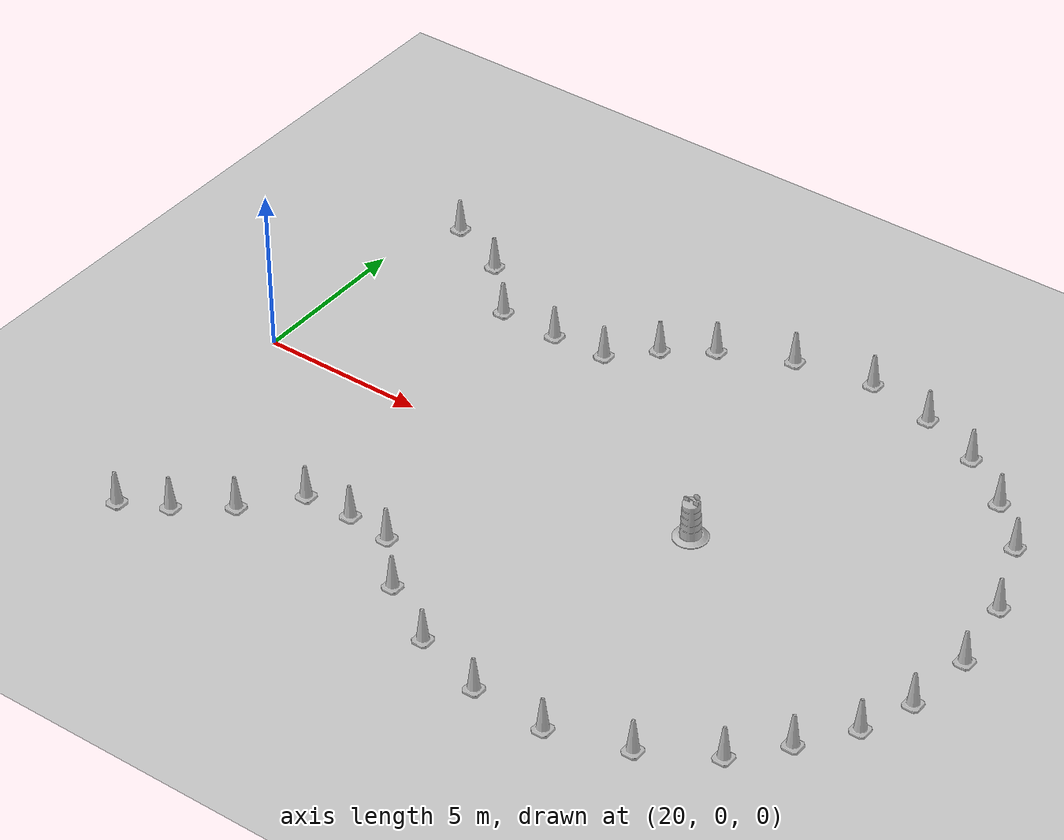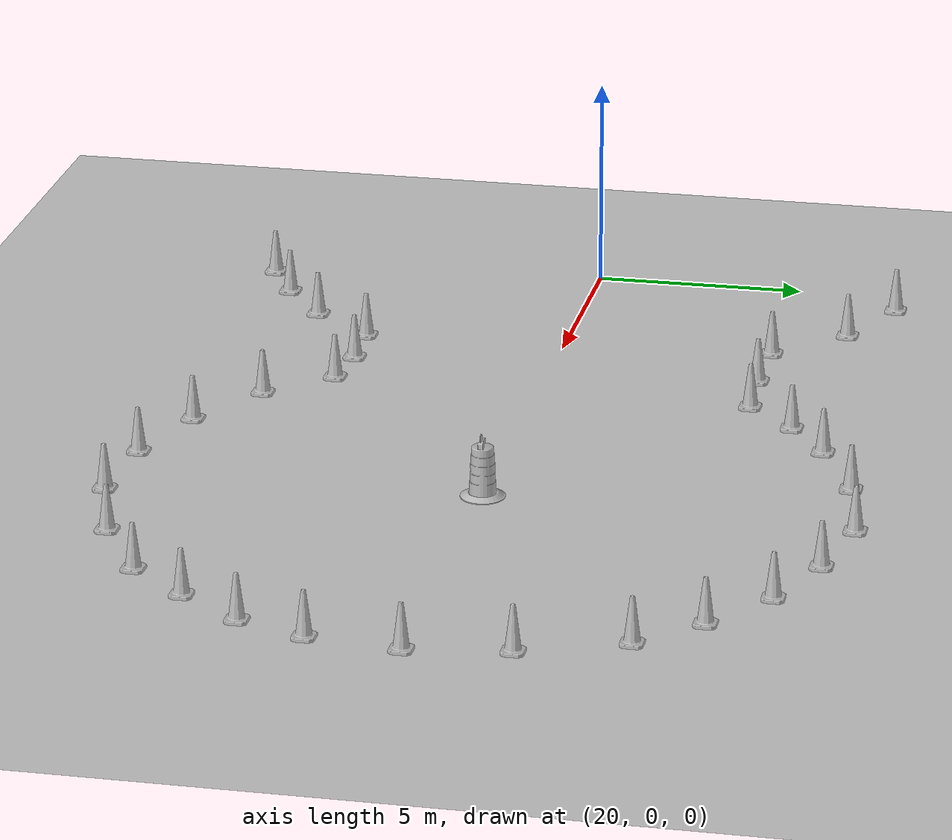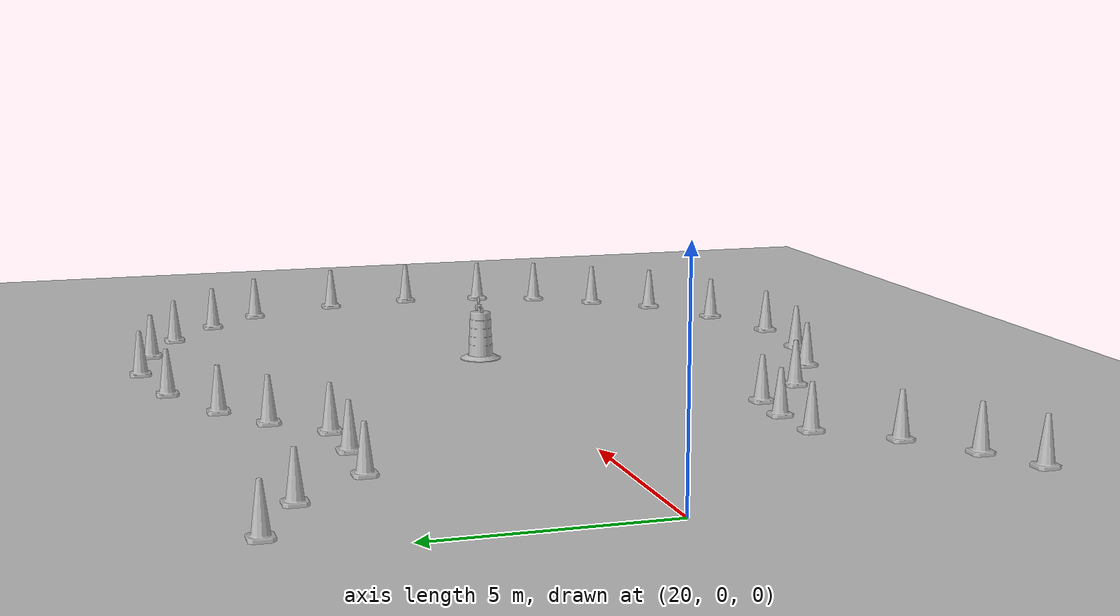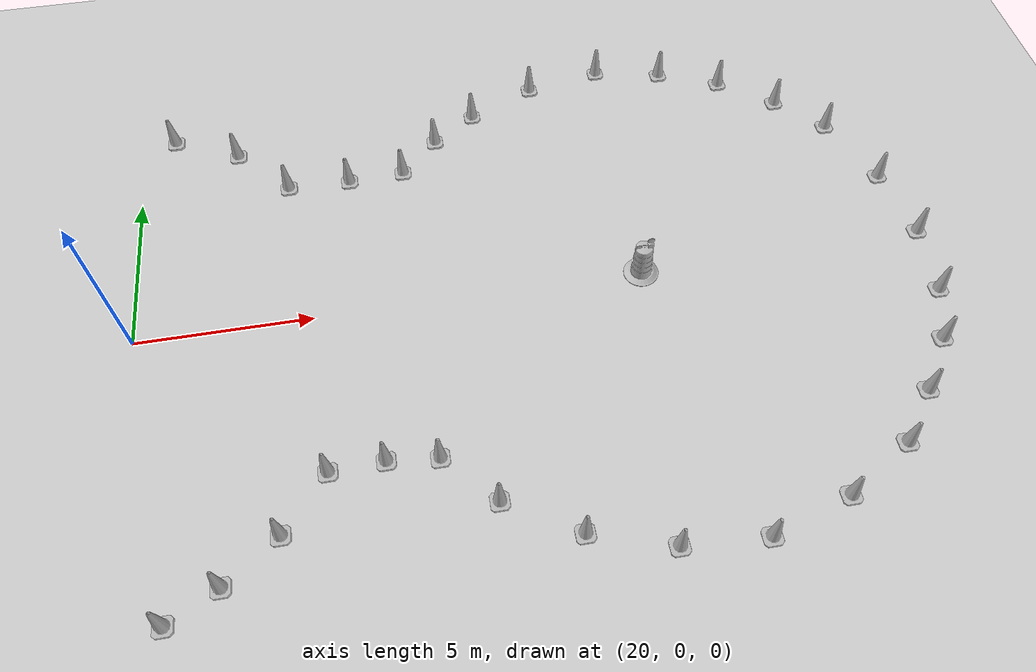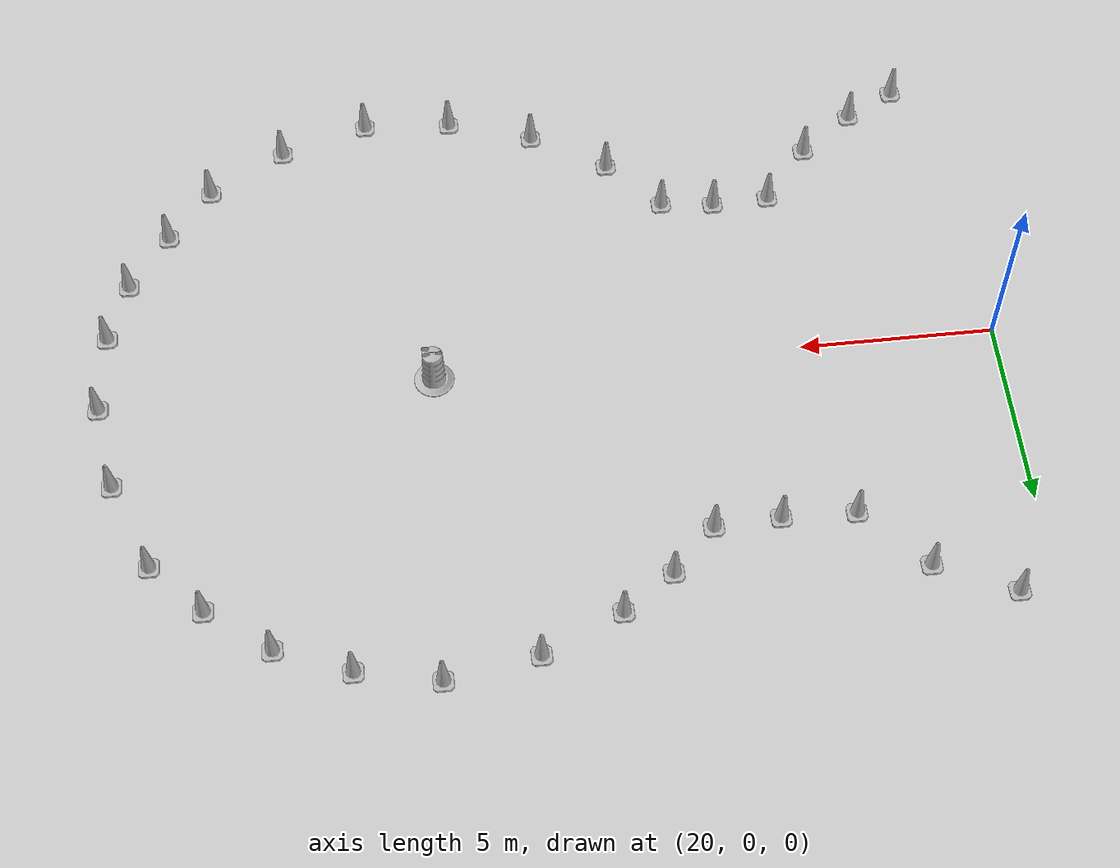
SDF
<sdf version="1.7">
 <world name="default">
  <model name="ground_plane">
   <static>1</static>
   <link name="link">
    <collision name="collision">
     <geometry><plane><normal>0 0 1</normal><size>100 100</size></plane></geometry>
     <surface>
      <contact><collide_bitmask>65535</collide_bitmask></contact>
      <friction><ode><mu>100</mu><mu2>50</mu2></ode></friction>
     </surface>
    </collision>
    <visual name="visual">
     <cast_shadows>0</cast_shadows>
     <geometry><plane><normal>0 0 1</normal><size>100 100</size></plane></geometry>
     <material>
      <script><uri>file://media/materials/scripts/gazebo.material</uri><name>Gazebo/Grey</name></script>
     </material>
    </visual>
   </link>
  </model>
  <model name="Construction Cone_18">
   <link name="link">
    <collision name="collision">
     <geometry>
      <mesh><scale>10 10 10</scale><uri>model://construction_cone/meshes/construction_cone.dae</uri></mesh>
     </geometry>
    </collision>
    <visual name="visual">
     <geometry>
      <mesh><scale>10 10 10</scale><uri>model://construction_cone/meshes/construction_cone.dae</uri></mesh>
     </geometry>
    </visual>
    <inertial>
     <inertia><ixx>1</ixx><ixy>0</ixy><ixz>0</ixz><iyy>1</iyy><iyz>0</iyz><izz>1</izz></inertia>
     <mass>1</mass>
    </inertial>
   </link>
   <pose>27.965 4.99109 -9e-06 1e-06 -1e-06 0</pose>
  </model>
  <model name="Construction Cone_19">
   <link name="link">
    <collision name="collision">
     <geometry>
      <mesh><scale>10 10 10</scale><uri>model://construction_cone/meshes/construction_cone.dae</uri></mesh>
     </geometry>
    </collision>
    <visual name="visual">
     <geometry>
      <mesh><scale>10 10 10</scale><uri>model://construction_cone/meshes/construction_cone.dae</uri></mesh>
     </geometry>
    </visual>
    <inertial>
     <inertia><ixx>1</ixx><ixy>0</ixy><ixz>0</ixz><iyy>1</iyy><iyz>0</iyz><izz>1</izz></inertia>
     <mass>1</mass>
    </inertial>
   </link>
   <pose>26.5932 -4.73262 -6e-06 -4e-06 0 0</pose>
  </model>
  <model name="Construction Cone_21">
   <link name="link">
    <collision name="collision">
     <geometry>
      <mesh><scale>10 10 10</scale><uri>model://construction_cone/meshes/construction_cone.dae</uri></mesh>
     </geometry>
    </collision>
    <visual name="visual">
     <geometry>
      <mesh><scale>10 10 10</scale><uri>model://construction_cone/meshes/construction_cone.dae</uri></mesh>
     </geometry>
    </visual>
    <inertial>
     <inertia><ixx>1</ixx><ixy>0</ixy><ixz>0</ixz><iyy>1</iyy><iyz>0</iyz><izz>1</izz></inertia>
     <mass>1</mass>
    </inertial>
   </link>
   <pose>34.8288 8.37486 -0 0 -1e-06 0</pose>
  </model>
  <model name="Construction Cone_22">
   <link name="link">
    <collision name="collision">
     <geometry>
      <mesh><scale>10 10 10</scale><uri>model://construction_cone/meshes/construction_cone.dae</uri></mesh>
     </geometry>
    </collision>
    <visual name="visual">
     <geometry>
      <mesh><scale>10 10 10</scale><uri>model://construction_cone/meshes/construction_cone.dae</uri></mesh>
     </geometry>
    </visual>
    <inertial>
     <inertia><ixx>1</ixx><ixy>0</ixy><ixz>0</ixz><iyy>1</iyy><iyz>0</iyz><izz>1</izz></inertia>
     <mass>1</mass>
    </inertial>
   </link>
   <pose>35.6707 -8.32648 -0 0 -0 0</pose>
  </model>
  <model name="Construction Cone_25">
   <link name="link">
    <collision name="collision">
     <geometry>
      <mesh><scale>10 10 10</scale><uri>model://construction_cone/meshes/construction_cone.dae</uri></mesh>
     </geometry>
    </collision>
    <visual name="visual">
     <geometry>
      <mesh><scale>10 10 10</scale><uri>model://construction_cone/meshes/construction_cone.dae</uri></mesh>
     </geometry>
    </visual>
    <inertial>
     <inertia><ixx>1</ixx><ixy>0</ixy><ixz>0</ixz><iyy>1</iyy><iyz>0</iyz><izz>1</izz></inertia>
     <mass>1</mass>
    </inertial>
   </link>
   <pose>42.8854 0.042319 -1e-05 -1e-06 0 0</pose>
  </model>
  <model name="Construction Cone_26">
   <link name="link">
    <collision name="collision">
     <geometry>
      <mesh><scale>10 10 10</scale><uri>model://construction_cone/meshes/construction_cone.dae</uri></mesh>
     </geometry>
    </collision>
    <visual name="visual">
     <geometry>
      <mesh><scale>10 10 10</scale><uri>model://construction_cone/meshes/construction_cone.dae</uri></mesh>
     </geometry>
    </visual>
    <inertial>
     <inertia><ixx>1</ixx><ixy>0</ixy><ixz>0</ixz><iyy>1</iyy><iyz>0</iyz><izz>1</izz></inertia>
     <mass>1</mass>
    </inertial>
   </link>
   <pose>41.0431 -5.12828 -0 0 -1e-06 0</pose>
  </model>
  <model name="Construction Cone_27">
   <link name="link">
    <collision name="collision">
     <geometry>
      <mesh><scale>10 10 10</scale><uri>model://construction_cone/meshes/construction_cone.dae</uri></mesh>
     </geometry>
    </collision>
    <visual name="visual">
     <geometry>
      <mesh><scale>10 10 10</scale><uri>model://construction_cone/meshes/construction_cone.dae</uri></mesh>
     </geometry>
    </visual>
    <inertial>
     <inertia><ixx>1</ixx><ixy>0</ixy><ixz>0</ixz><iyy>1</iyy><iyz>0</iyz><izz>1</izz></inertia>
     <mass>1</mass>
    </inertial>
   </link>
   <pose>40.3648 5.9811 -0 0 -0 0</pose>
  </model>
  <model name="Construction Cone_28">
   <link name="link">
    <collision name="collision">
     <geometry>
      <mesh><scale>10 10 10</scale><uri>model://construction_cone/meshes/construction_cone.dae</uri></mesh>
     </geometry>
    </collision>
    <visual name="visual">
     <geometry>
      <mesh><scale>10 10 10</scale><uri>model://construction_cone/meshes/construction_cone.dae</uri></mesh>
     </geometry>
    </visual>
    <inertial>
     <inertia><ixx>1</ixx><ixy>0</ixy><ixz>0</ixz><iyy>1</iyy><iyz>0</iyz><izz>1</izz></inertia>
     <mass>1</mass>
    </inertial>
   </link>
   <pose>22.8958 6.56539 -0 0 -0 0</pose>
  </model>
  <model name="Construction Cone_30">
   <link name="link">
    <collision name="collision">
     <geometry>
      <mesh><scale>10 10 10</scale><uri>model://construction_cone/meshes/construction_cone.dae</uri></mesh>
     </geometry>
    </collision>
    <visual name="visual">
     <geometry>
      <mesh><scale>10 10 10</scale><uri>model://construction_cone/meshes/construction_cone.dae</uri></mesh>
     </geometry>
    </visual>
    <inertial>
     <inertia><ixx>1</ixx><ixy>0</ixy><ixz>0</ixz><iyy>1</iyy><iyz>0</iyz><izz>1</izz></inertia>
     <mass>1</mass>
    </inertial>
   </link>
   <pose>30.4253 7.04171 -0 0 -1e-06 0</pose>
  </model>
  <model name="Construction Cone_33">
   <link name="link">
    <collision name="collision">
     <geometry>
      <mesh><scale>10 10 10</scale><uri>model://construction_cone/meshes/construction_cone.dae</uri></mesh>
     </geometry>
    </collision>
    <visual name="visual">
     <geometry>
      <mesh><scale>10 10 10</scale><uri>model://construction_cone/meshes/construction_cone.dae</uri></mesh>
     </geometry>
    </visual>
    <inertial>
     <inertia><ixx>1</ixx><ixy>0</ixy><ixz>0</ixz><iyy>1</iyy><iyz>0</iyz><izz>1</izz></inertia>
     <mass>1</mass>
    </inertial>
   </link>
   <pose>20.9384 7.47675 -0 0 -1e-06 0</pose>
  </model>
  <model name="Construction Cone_34">
   <link name="link">
    <collision name="collision">
     <geometry>
      <mesh><scale>10 10 10</scale><uri>model://construction_cone/meshes/construction_cone.dae</uri></mesh>
     </geometry>
    </collision>
    <visual name="visual">
     <geometry>
      <mesh><scale>10 10 10</scale><uri>model://construction_cone/meshes/construction_cone.dae</uri></mesh>
     </geometry>
    </visual>
    <inertial>
     <inertia><ixx>1</ixx><ixy>0</ixy><ixz>0</ixz><iyy>1</iyy><iyz>0</iyz><izz>1</izz></inertia>
     <mass>1</mass>
    </inertial>
   </link>
   <pose>24.4328 4.95756 -0 0 -0 0</pose>
  </model>
  <model name="Construction Cone_35">
   <link name="link">
    <collision name="collision">
     <geometry>
      <mesh><scale>10 10 10</scale><uri>model://construction_cone/meshes/construction_cone.dae</uri></mesh>
     </geometry>
    </collision>
    <visual name="visual">
     <geometry>
      <mesh><scale>10 10 10</scale><uri>model://construction_cone/meshes/construction_cone.dae</uri></mesh>
     </geometry>
    </visual>
    <inertial>
     <inertia><ixx>1</ixx><ixy>0</ixy><ixz>0</ixz><iyy>1</iyy><iyz>0</iyz><izz>1</izz></inertia>
     <mass>1</mass>
    </inertial>
   </link>
   <pose>26.2937 4.90693 -0 0 -0 0</pose>
  </model>
  <model name="Construction Cone_36">
   <link name="link">
    <collision name="collision">
     <geometry>
      <mesh><scale>10 10 10</scale><uri>model://construction_cone/meshes/construction_cone.dae</uri></mesh>
     </geometry>
    </collision>
    <visual name="visual">
     <geometry>
      <mesh><scale>10 10 10</scale><uri>model://construction_cone/meshes/construction_cone.dae</uri></mesh>
     </geometry>
    </visual>
    <inertial>
     <inertia><ixx>1</ixx><ixy>0</ixy><ixz>0</ixz><iyy>1</iyy><iyz>0</iyz><izz>1</izz></inertia>
     <mass>1</mass>
    </inertial>
   </link>
   <pose>29.0997 6.12797 -1e-05 -1e-06 0 0</pose>
  </model>
  <model name="Construction Cone_37">
   <link name="link">
    <collision name="collision">
     <geometry>
      <mesh><scale>10 10 10</scale><uri>model://construction_cone/meshes/construction_cone.dae</uri></mesh>
     </geometry>
    </collision>
    <visual name="visual">
     <geometry>
      <mesh><scale>10 10 10</scale><uri>model://construction_cone/meshes/construction_cone.dae</uri></mesh>
     </geometry>
    </visual>
    <inertial>
     <inertia><ixx>1</ixx><ixy>0</ixy><ixz>0</ixz><iyy>1</iyy><iyz>0</iyz><izz>1</izz></inertia>
     <mass>1</mass>
    </inertial>
   </link>
   <pose>32.4808 7.95831 -5e-06 -4e-06 1e-06 0</pose>
  </model>
  <model name="Construction Cone_38">
   <link name="link">
    <collision name="collision">
     <geometry>
      <mesh><scale>10 10 10</scale><uri>model://construction_cone/meshes/construction_cone.dae</uri></mesh>
     </geometry>
    </collision>
    <visual name="visual">
     <geometry>
      <mesh><scale>10 10 10</scale><uri>model://construction_cone/meshes/construction_cone.dae</uri></mesh>
     </geometry>
    </visual>
    <inertial>
     <inertia><ixx>1</ixx><ixy>0</ixy><ixz>0</ixz><iyy>1</iyy><iyz>0</iyz><izz>1</izz></inertia>
     <mass>1</mass>
    </inertial>
   </link>
   <pose>36.9065 7.92964 -3e-06 -3e-06 -1e-06 -0</pose>
  </model>
  <model name="Construction Cone_39">
   <link name="link">
    <collision name="collision">
     <geometry>
      <mesh><scale>10 10 10</scale><uri>model://construction_cone/meshes/construction_cone.dae</uri></mesh>
     </geometry>
    </collision>
    <visual name="visual">
     <geometry>
      <mesh><scale>10 10 10</scale><uri>model://construction_cone/meshes/construction_cone.dae</uri></mesh>
     </geometry>
    </visual>
    <inertial>
     <inertia><ixx>1</ixx><ixy>0</ixy><ixz>0</ixz><iyy>1</iyy><iyz>0</iyz><izz>1</izz></inertia>
     <mass>1</mass>
    </inertial>
   </link>
   <pose>38.7693 7.17099 -0 -0 -0 -0</pose>
  </model>
  <model name="Construction Cone_40">
   <link name="link">
    <collision name="collision">
     <geometry>
      <mesh><scale>10 10 10</scale><uri>model://construction_cone/meshes/construction_cone.dae</uri></mesh>
     </geometry>
    </collision>
    <visual name="visual">
     <geometry>
      <mesh><scale>10 10 10</scale><uri>model://construction_cone/meshes/construction_cone.dae</uri></mesh>
     </geometry>
    </visual>
    <inertial>
     <inertia><ixx>1</ixx><ixy>0</ixy><ixz>0</ixz><iyy>1</iyy><iyz>0</iyz><izz>1</izz></inertia>
     <mass>1</mass>
    </inertial>
   </link>
   <pose>41.6445 4.65655 -6e-06 2e-06 -0 0</pose>
  </model>
  <model name="Construction Cone_41">
   <link name="link">
    <collision name="collision">
     <geometry>
      <mesh><scale>10 10 10</scale><uri>model://construction_cone/meshes/construction_cone.dae</uri></mesh>
     </geometry>
    </collision>
    <visual name="visual">
     <geometry>
      <mesh><scale>10 10 10</scale><uri>model://construction_cone/meshes/construction_cone.dae</uri></mesh>
     </geometry>
    </visual>
    <inertial>
     <inertia><ixx>1</ixx><ixy>0</ixy><ixz>0</ixz><iyy>1</iyy><iyz>0</iyz><izz>1</izz></inertia>
     <mass>1</mass>
    </inertial>
   </link>
   <pose>42.5388 2.32461 -9e-06 1e-06 -1e-06 0</pose>
  </model>
  <model name="Construction Cone_42">
   <link name="link">
    <collision name="collision">
     <geometry>
      <mesh><scale>10 10 10</scale><uri>model://construction_cone/meshes/construction_cone.dae</uri></mesh>
     </geometry>
    </collision>
    <visual name="visual">
     <geometry>
      <mesh><scale>10 10 10</scale><uri>model://construction_cone/meshes/construction_cone.dae</uri></mesh>
     </geometry>
    </visual>
    <inertial>
     <inertia><ixx>1</ixx><ixy>0</ixy><ixz>0</ixz><iyy>1</iyy><iyz>0</iyz><izz>1</izz></inertia>
     <mass>1</mass>
    </inertial>
   </link>
   <pose>42.6589 -2.07592 -0 0 -1e-06 0</pose>
  </model>
  <model name="Construction Cone_43">
   <link name="link">
    <collision name="collision">
     <geometry>
      <mesh><scale>10 10 10</scale><uri>model://construction_cone/meshes/construction_cone.dae</uri></mesh>
     </geometry>
    </collision>
    <visual name="visual">
     <geometry>
      <mesh><scale>10 10 10</scale><uri>model://construction_cone/meshes/construction_cone.dae</uri></mesh>
     </geometry>
    </visual>
    <inertial>
     <inertia><ixx>1</ixx><ixy>0</ixy><ixz>0</ixz><iyy>1</iyy><iyz>0</iyz><izz>1</izz></inertia>
     <mass>1</mass>
    </inertial>
   </link>
   <pose>42.0906 -3.65847 0 -0 -0 -0</pose>
  </model>
  <model name="Construction Cone_44">
   <link name="link">
    <collision name="collision">
     <geometry>
      <mesh><scale>10 10 10</scale><uri>model://construction_cone/meshes/construction_cone.dae</uri></mesh>
     </geometry>
    </collision>
    <visual name="visual">
     <geometry>
      <mesh><scale>10 10 10</scale><uri>model://construction_cone/meshes/construction_cone.dae</uri></mesh>
     </geometry>
    </visual>
    <inertial>
     <inertia><ixx>1</ixx><ixy>0</ixy><ixz>0</ixz><iyy>1</iyy><iyz>0</iyz><izz>1</izz></inertia>
     <mass>1</mass>
    </inertial>
   </link>
   <pose>39.9017 -6.50049 -0 0 -0 0</pose>
  </model>
  <model name="Construction Cone_45">
   <link name="link">
    <collision name="collision">
     <geometry>
      <mesh><scale>10 10 10</scale><uri>model://construction_cone/meshes/construction_cone.dae</uri></mesh>
     </geometry>
    </collision>
    <visual name="visual">
     <geometry>
      <mesh><scale>10 10 10</scale><uri>model://construction_cone/meshes/construction_cone.dae</uri></mesh>
     </geometry>
    </visual>
    <inertial>
     <inertia><ixx>1</ixx><ixy>0</ixy><ixz>0</ixz><iyy>1</iyy><iyz>0</iyz><izz>1</izz></inertia>
     <mass>1</mass>
    </inertial>
   </link>
   <pose>37.9424 -7.63443 -0 0 -0 0</pose>
  </model>
  <model name="Construction Cone_46">
   <link name="link">
    <collision name="collision">
     <geometry>
      <mesh><scale>10 10 10</scale><uri>model://construction_cone/meshes/construction_cone.dae</uri></mesh>
     </geometry>
    </collision>
    <visual name="visual">
     <geometry>
      <mesh><scale>10 10 10</scale><uri>model://construction_cone/meshes/construction_cone.dae</uri></mesh>
     </geometry>
    </visual>
    <inertial>
     <inertia><ixx>1</ixx><ixy>0</ixy><ixz>0</ixz><iyy>1</iyy><iyz>0</iyz><izz>1</izz></inertia>
     <mass>1</mass>
    </inertial>
   </link>
   <pose>27.9634 -4.88484 -0 0 -0 0</pose>
  </model>
  <model name="Construction Cone_47">
   <link name="link">
    <collision name="collision">
     <geometry>
      <mesh><scale>10 10 10</scale><uri>model://construction_cone/meshes/construction_cone.dae</uri></mesh>
     </geometry>
    </collision>
    <visual name="visual">
     <geometry>
      <mesh><scale>10 10 10</scale><uri>model://construction_cone/meshes/construction_cone.dae</uri></mesh>
     </geometry>
    </visual>
    <inertial>
     <inertia><ixx>1</ixx><ixy>0</ixy><ixz>0</ixz><iyy>1</iyy><iyz>0</iyz><izz>1</izz></inertia>
     <mass>1</mass>
    </inertial>
   </link>
   <pose>29.279 -6.3025 -0 0 -1e-06 0</pose>
  </model>
  <model name="Construction Cone_48">
   <link name="link">
    <collision name="collision">
     <geometry>
      <mesh><scale>10 10 10</scale><uri>model://construction_cone/meshes/construction_cone.dae</uri></mesh>
     </geometry>
    </collision>
    <visual name="visual">
     <geometry>
      <mesh><scale>10 10 10</scale><uri>model://construction_cone/meshes/construction_cone.dae</uri></mesh>
     </geometry>
    </visual>
    <inertial>
     <inertia><ixx>1</ixx><ixy>0</ixy><ixz>0</ixz><iyy>1</iyy><iyz>0</iyz><izz>1</izz></inertia>
     <mass>1</mass>
    </inertial>
   </link>
   <pose>31.2043 -7.4761 -1e-06 3e-06 -1e-06 0</pose>
  </model>
  <model name="Construction Cone_49">
   <link name="link">
    <collision name="collision">
     <geometry>
      <mesh><scale>10 10 10</scale><uri>model://construction_cone/meshes/construction_cone.dae</uri></mesh>
     </geometry>
    </collision>
    <visual name="visual">
     <geometry>
      <mesh><scale>10 10 10</scale><uri>model://construction_cone/meshes/construction_cone.dae</uri></mesh>
     </geometry>
    </visual>
    <inertial>
     <inertia><ixx>1</ixx><ixy>0</ixy><ixz>0</ixz><iyy>1</iyy><iyz>0</iyz><izz>1</izz></inertia>
     <mass>1</mass>
    </inertial>
   </link>
   <pose>33.3875 -8.17645 -0 0 -0 0</pose>
  </model>
  <model name="Construction Cone_50">
   <link name="link">
    <collision name="collision">
     <geometry>
      <mesh><scale>10 10 10</scale><uri>model://construction_cone/meshes/construction_cone.dae</uri></mesh>
     </geometry>
    </collision>
    <visual name="visual">
     <geometry>
      <mesh><scale>10 10 10</scale><uri>model://construction_cone/meshes/construction_cone.dae</uri></mesh>
     </geometry>
    </visual>
    <inertial>
     <inertia><ixx>1</ixx><ixy>0</ixy><ixz>0</ixz><iyy>1</iyy><iyz>0</iyz><izz>1</izz></inertia>
     <mass>1</mass>
    </inertial>
   </link>
   <pose>25.1102 -4.78685 -0 0 -1e-06 0</pose>
  </model>
  <model name="Construction Cone_52">
   <link name="link">
    <collision name="collision">
     <geometry>
      <mesh><scale>10 10 10</scale><uri>model://construction_cone/meshes/construction_cone.dae</uri></mesh>
     </geometry>
    </collision>
    <visual name="visual">
     <geometry>
      <mesh><scale>10 10 10</scale><uri>model://construction_cone/meshes/construction_cone.dae</uri></mesh>
     </geometry>
    </visual>
    <inertial>
     <inertia><ixx>1</ixx><ixy>0</ixy><ixz>0</ixz><iyy>1</iyy><iyz>0</iyz><izz>1</izz></inertia>
     <mass>1</mass>
    </inertial>
   </link>
   <pose>21.1621 -7.99989 -0 0 -0 0</pose>
  </model>
  <model name="Construction Cone_53">
   <link name="link">
    <collision name="collision">
     <geometry>
      <mesh><scale>10 10 10</scale><uri>model://construction_cone/meshes/construction_cone.dae</uri></mesh>
     </geometry>
    </collision>
    <visual name="visual">
     <geometry>
      <mesh><scale>10 10 10</scale><uri>model://construction_cone/meshes/construction_cone.dae</uri></mesh>
     </geometry>
    </visual>
    <inertial>
     <inertia><ixx>1</ixx><ixy>0</ixy><ixz>0</ixz><iyy>1</iyy><iyz>0</iyz><izz>1</izz></inertia>
     <mass>1</mass>
    </inertial>
   </link>
   <pose>22.469 -7.31085 -6e-06 -4e-06 0 0</pose>
  </model>
  <model name="Construction Cone_54">
   <link name="link">
    <collision name="collision">
     <geometry>
      <mesh><scale>10 10 10</scale><uri>model://construction_cone/meshes/construction_cone.dae</uri></mesh>
     </geometry>
    </collision>
    <visual name="visual">
     <geometry>
      <mesh><scale>10 10 10</scale><uri>model://construction_cone/meshes/construction_cone.dae</uri></mesh>
     </geometry>
    </visual>
    <inertial>
     <inertia><ixx>1</ixx><ixy>0</ixy><ixz>0</ixz><iyy>1</iyy><iyz>0</iyz><izz>1</izz></inertia>
     <mass>1</mass>
    </inertial>
   </link>
   <pose>23.8915 -6.26371 -0 0 -1e-06 0</pose>
  </model>
  <model name="Construction Barrel_0">
   <link name="link">
    <inertial>
     <pose>0 0 0.4 0 -0 0</pose>
     <mass>500</mass>
     <inertia><ixx>51.2096</ixx><iyy>51.2096</iyy><izz>25</izz><ixy>0</ixy><ixz>0</ixz><iyz>0</iyz></inertia>
    </inertial>
    <collision name="collision">
     <geometry><mesh><uri>model://construction_barrel/meshes/construction_barrel.dae</uri></mesh></geometry>
    </collision>
    <visual name="visual">
     <geometry><mesh><uri>model://construction_barrel/meshes/construction_barrel.dae</uri></mesh></geometry>
    </visual>
   </link>
   <pose>34.4042 -0.002127 -2e-06 6e-06 -4e-06 -5e-06</pose>
  </model>
 </world>
</sdf>
